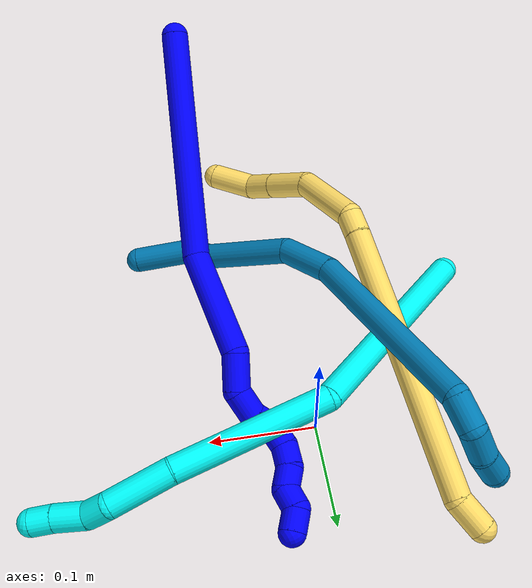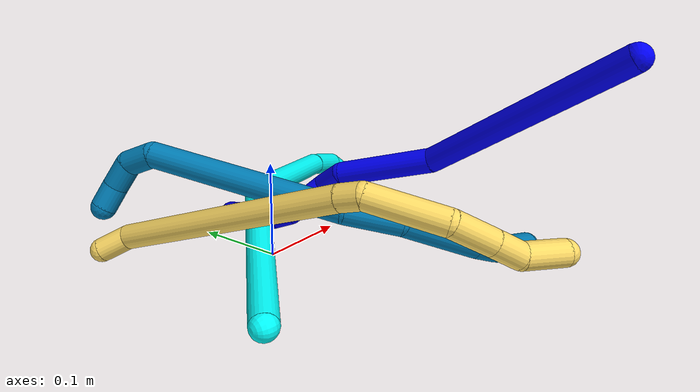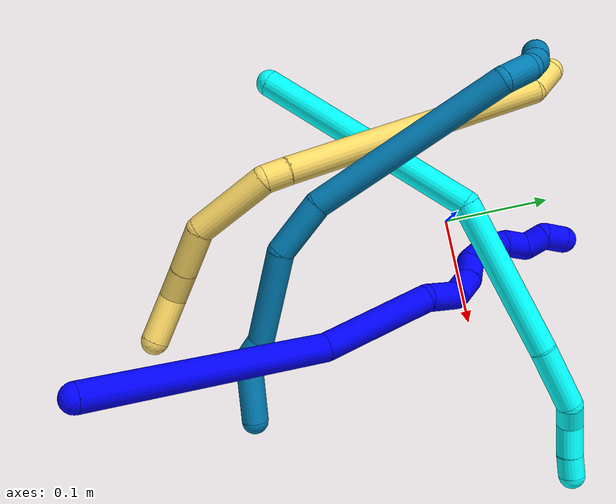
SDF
<sdf version="1.7">
 <world name="default">
  <model name="photoneo_s_sensor">
   <static>1</static>
   <pose>0 0 2 1.57079 1.57079 3.14159</pose>
   <link name="link">
    <inertial><mass>0.1</mass></inertial>
    <sensor name="sensor" type="depth">
     <update_rate>30</update_rate>
     <camera>
      <horizontal_fov>1.22</horizontal_fov>
      <image><width>1920</width><height>1200</height><format>B8G8R8</format></image>
      <clip><near>0.1</near><far>4</far></clip>
      <depth_camera><output>points</output></depth_camera>
     </camera>
     <plugin name="camera_plugin" filename="libgazebo_ros_depth_camera.so">
      <baseline>0.2</baseline>
      <alwaysOn>1</alwaysOn>
      <updateRate>0.0</updateRate>
      <cameraName>camera_ir</cameraName>
      <imageTopicName>/camera/color/image_raw</imageTopicName>
      <cameraInfoTopicName>/camera/color/camera_info</cameraInfoTopicName>
      <depthImageTopicName>/camera/depth/image_raw</depthImageTopicName>
      <depthImageCameraInfoTopicName>/camera/depth/camera_info</depthImageCameraInfoTopicName>
      <pointCloudTopicName>/camera/depth/points</pointCloudTopicName>
      <frameName>fr_optical</frameName>
      <pointCloudCutoff>0.1</pointCloudCutoff>
      <pointCloudCutoffMax>2.0</pointCloudCutoffMax>
      <distortionK1>0</distortionK1>
      <distortionK2>0</distortionK2>
      <distortionK3>0</distortionK3>
      <distortionT1>0</distortionT1>
      <distortionT2>0</distortionT2>
      <CxPrime>0</CxPrime>
      <Cx>0</Cx>
      <Cy>0</Cy>
      <focalLength>0</focalLength>
      <hackBaseline>0</hackBaseline>
     </plugin>
    </sensor>
   </link>
  </model>
  <model name="bin">
   <static>1</static>
   <link name="bottom">
    <collision name="collision-bottom">
     <pose>0 0 -0.01 0 -0 0</pose>
     <geometry><box><size>0.8 0.6 0.02</size></box></geometry>
     <surface>
      <friction><ode><mu>100</mu><mu2>100</mu2></ode></friction>
      <contact><collide_bitmask>65535</collide_bitmask></contact>
     </surface>
    </collision>
   </link>
   <link name="west_wall">
    <collision name="collision-west_wall">
     <pose>-0.41 0 0.1 0 -0 0</pose>
     <geometry><box><size>0.02 0.6 0.2</size></box></geometry>
     <surface>
      <friction><ode><mu>100</mu><mu2>100</mu2></ode></friction>
      <contact><collide_bitmask>65535</collide_bitmask></contact>
     </surface>
    </collision>
   </link>
   <link name="east_wall">
    <collision name="collision-east_wall">
     <pose>0.41 0 0.1 0 -0 0</pose>
     <geometry><box><size>0.02 0.6 0.2</size></box></geometry>
     <surface>
      <friction><ode><mu>100</mu><mu2>100</mu2></ode></friction>
      <contact><collide_bitmask>65535</collide_bitmask></contact>
     </surface>
    </collision>
   </link>
   <link name="south_wall">
    <collision name="collision-south_wall">
     <pose>0 -0.31 0.1 0 -0 0</pose>
     <geometry><box><size>0.8 0.02 0.2</size></box></geometry>
     <surface>
      <friction><ode><mu>100</mu><mu2>100</mu2></ode></friction>
      <contact><collide_bitmask>65535</collide_bitmask></contact>
     </surface>
    </collision>
   </link>
   <link name="north_wall">
    <collision name="collision-north_wall">
     <pose>0 0.31 0.1 0 -0 0</pose>
     <geometry><box><size>0.8 0.02 0.2</size></box></geometry>
     <surface>
      <friction><ode><mu>100</mu><mu2>100</mu2></ode></friction>
      <contact><collide_bitmask>65535</collide_bitmask></contact>
     </surface>
    </collision>
   </link>
  </model>
  <model name="1">
   <static>0</static>
   <link name="1">
    <collision name="collision-cylinder-e_1_1_4">
     <pose>-0.036711 0.092168 -0.041625 -1.995 -0.348209 0.531938</pose>
     <geometry><cylinder><radius>0.0125</radius><length>0.215176</length></cylinder></geometry>
     <surface>
      <friction><ode><mu>1.16</mu><mu2>1.16</mu2><slip1>0</slip1><slip2>0</slip2></ode></friction>
      <contact><ode><kp>1e+06</kp><kd>1</kd><max_vel>0</max_vel><min_depth>0.001</min_depth></ode></contact>
     </surface>
    </collision>
    <visual name="visual-cylinder-e_1_1_4">
     <pose>-0.036711 0.092168 -0.041625 -1.995 -0.348209 0.531938</pose>
     <geometry><cylinder><radius>0.0125</radius><length>0.215176</length></cylinder></geometry>
     <material><ambient>0 0 1 1</ambient></material>
    </visual>
    <collision name="collision-cylinder-e_2_4_5">
     <pose>-0.074927 0.234196 -0.09264 -1.75696 -0.029669 0.035778</pose>
     <geometry><cylinder><radius>0.0125</radius><length>0.101518</length></cylinder></geometry>
     <surface>
      <friction><ode><mu>1.16</mu><mu2>1.16</mu2><slip1>0</slip1><slip2>0</slip2></ode></friction>
      <contact><ode><kp>1e+06</kp><kd>1</kd><max_vel>0</max_vel><min_depth>0.001</min_depth></ode></contact>
     </surface>
    </collision>
    <visual name="visual-cylinder-e_2_4_5">
     <pose>-0.074927 0.234196 -0.09264 -1.75696 -0.029669 0.035778</pose>
     <geometry><cylinder><radius>0.0125</radius><length>0.101518</length></cylinder></geometry>
     <material><ambient>0 0 1 1</ambient></material>
    </visual>
    <collision name="collision-cylinder-e_3_5_6">
     <pose>-0.083049 0.297911 -0.1094 -2.05958 -0.39897 0.649215</pose>
     <geometry><cylinder><radius>0.0125</radius><length>0.034061</length></cylinder></geometry>
     <surface>
      <friction><ode><mu>1.16</mu><mu2>1.16</mu2><slip1>0</slip1><slip2>0</slip2></ode></friction>
      <contact><ode><kp>1e+06</kp><kd>1</kd><max_vel>0</max_vel><min_depth>0.001</min_depth></ode></contact>
     </surface>
    </collision>
    <visual name="visual-cylinder-e_3_5_6">
     <pose>-0.083049 0.297911 -0.1094 -2.05958 -0.39897 0.649215</pose>
     <geometry><cylinder><radius>0.0125</radius><length>0.034061</length></cylinder></geometry>
     <material><ambient>0 0 1 1</ambient></material>
    </visual>
    <collision name="collision-cylinder-e_4_6_7">
     <pose>-0.095521 0.323242 -0.114994 -1.41739 -0.467122 0.402373</pose>
     <geometry><cylinder><radius>0.0125</radius><length>0.026011</length></cylinder></geometry>
     <surface>
      <friction><ode><mu>1.16</mu><mu2>1.16</mu2><slip1>0</slip1><slip2>0</slip2></ode></friction>
      <contact><ode><kp>1e+06</kp><kd>1</kd><max_vel>0</max_vel><min_depth>0.001</min_depth></ode></contact>
     </surface>
    </collision>
    <visual name="visual-cylinder-e_4_6_7">
     <pose>-0.095521 0.323242 -0.114994 -1.41739 -0.467122 0.402373</pose>
     <geometry><cylinder><radius>0.0125</radius><length>0.026011</length></cylinder></geometry>
     <material><ambient>0 0 1 1</ambient></material>
    </visual>
    <collision name="collision-cylinder-e_5_7_8">
     <pose>-0.10629 0.342576 -0.10764 -0.953354 -0.471395 0.246776</pose>
     <geometry><cylinder><radius>0.0125</radius><length>0.021636</length></cylinder></geometry>
     <surface>
      <friction><ode><mu>1.16</mu><mu2>1.16</mu2><slip1>0</slip1><slip2>0</slip2></ode></friction>
      <contact><ode><kp>1e+06</kp><kd>1</kd><max_vel>0</max_vel><min_depth>0.001</min_depth></ode></contact>
     </surface>
    </collision>
    <visual name="visual-cylinder-e_5_7_8">
     <pose>-0.10629 0.342576 -0.10764 -0.953354 -0.471395 0.246776</pose>
     <geometry><cylinder><radius>0.0125</radius><length>0.021636</length></cylinder></geometry>
     <material><ambient>0 0 1 1</ambient></material>
    </visual>
    <collision name="collision-cylinder-e_6_8_9">
     <pose>-0.112171 0.360586 -0.101694 -1.53479 -0.095008 0.091652</pose>
     <geometry><cylinder><radius>0.0125</radius><length>0.020408</length></cylinder></geometry>
     <surface>
      <friction><ode><mu>1.16</mu><mu2>1.16</mu2><slip1>0</slip1><slip2>0</slip2></ode></friction>
      <contact><ode><kp>1e+06</kp><kd>1</kd><max_vel>0</max_vel><min_depth>0.001</min_depth></ode></contact>
     </surface>
    </collision>
    <visual name="visual-cylinder-e_6_8_9">
     <pose>-0.112171 0.360586 -0.101694 -1.53479 -0.095008 0.091652</pose>
     <geometry><cylinder><radius>0.0125</radius><length>0.020408</length></cylinder></geometry>
     <material><ambient>0 0 1 1</ambient></material>
    </visual>
    <collision name="collision-cylinder-e_7_9_10">
     <pose>-0.1124 0.380293 -0.104819 -1.92104 0.072528 -0.103662</pose>
     <geometry><cylinder><radius>0.0125</radius><length>0.020401</length></cylinder></geometry>
     <surface>
      <friction><ode><mu>1.16</mu><mu2>1.16</mu2><slip1>0</slip1><slip2>0</slip2></ode></friction>
      <contact><ode><kp>1e+06</kp><kd>1</kd><max_vel>0</max_vel><min_depth>0.001</min_depth></ode></contact>
     </surface>
    </collision>
    <visual name="visual-cylinder-e_7_9_10">
     <pose>-0.1124 0.380293 -0.104819 -1.92104 0.072528 -0.103662</pose>
     <geometry><cylinder><radius>0.0125</radius><length>0.020401</length></cylinder></geometry>
     <material><ambient>0 0 1 1</ambient></material>
    </visual>
    <collision name="collision-cylinder-e_8_10_11">
     <pose>-0.111772 0.397128 -0.115282 -2.33471 -0.011017 0.025807</pose>
     <geometry><cylinder><radius>0.0125</radius><length>0.020159</length></cylinder></geometry>
     <surface>
      <friction><ode><mu>1.16</mu><mu2>1.16</mu2><slip1>0</slip1><slip2>0</slip2></ode></friction>
      <contact><ode><kp>1e+06</kp><kd>1</kd><max_vel>0</max_vel><min_depth>0.001</min_depth></ode></contact>
     </surface>
    </collision>
    <visual name="visual-cylinder-e_8_10_11">
     <pose>-0.111772 0.397128 -0.115282 -2.33471 -0.011017 0.025807</pose>
     <geometry><cylinder><radius>0.0125</radius><length>0.020159</length></cylinder></geometry>
     <material><ambient>0 0 1 1</ambient></material>
    </visual>
    <collision name="collision-cylinder-e_9_11_12">
     <pose>-0.109731 0.414259 -0.123379 -1.68444 0.213667 -0.239209</pose>
     <geometry><cylinder><radius>0.0125</radius><length>0.020295</length></cylinder></geometry>
     <surface>
      <friction><ode><mu>1.16</mu><mu2>1.16</mu2><slip1>0</slip1><slip2>0</slip2></ode></friction>
      <contact><ode><kp>1e+06</kp><kd>1</kd><max_vel>0</max_vel><min_depth>0.001</min_depth></ode></contact>
     </surface>
    </collision>
    <visual name="visual-cylinder-e_9_11_12">
     <pose>-0.109731 0.414259 -0.123379 -1.68444 0.213667 -0.239209</pose>
     <geometry><cylinder><radius>0.0125</radius><length>0.020295</length></cylinder></geometry>
     <material><ambient>0 0 1 1</ambient></material>
    </visual>
    <collision name="collision-cylinder-e_10_12_2">
     <pose>-0.108413 0.431447 -0.131495 -2.33218 -0.082062 0.1911</pose>
     <geometry><cylinder><radius>0.0125</radius><length>0.020336</length></cylinder></geometry>
     <surface>
      <friction><ode><mu>1.16</mu><mu2>1.16</mu2><slip1>0</slip1><slip2>0</slip2></ode></friction>
      <contact><ode><kp>1e+06</kp><kd>1</kd><max_vel>0</max_vel><min_depth>0.001</min_depth></ode></contact>
     </surface>
    </collision>
    <visual name="visual-cylinder-e_10_12_2">
     <pose>-0.108413 0.431447 -0.131495 -2.33218 -0.082062 0.1911</pose>
     <geometry><cylinder><radius>0.0125</radius><length>0.020336</length></cylinder></geometry>
     <material><ambient>0 0 1 1</ambient></material>
    </visual>
    <collision name="collision-sphere-2">
     <pose>-0.109246 0.438782 -0.138487 0 -0 0</pose>
     <geometry><sphere><radius>0.0125</radius></sphere></geometry>
     <surface>
      <friction><ode><mu>1.16</mu><mu2>1.16</mu2><slip1>0</slip1><slip2>0</slip2></ode></friction>
      <contact><ode><kp>1e+06</kp><kd>1</kd><max_vel>0</max_vel><min_depth>0.001</min_depth></ode></contact>
     </surface>
    </collision>
    <visual name="visual-sphere-2">
     <pose>-0.109246 0.438782 -0.138487 0 -0 0</pose>
     <geometry><sphere><radius>0.0125</radius></sphere></geometry>
     <material><ambient>0 0 1 1</ambient></material>
    </visual>
    <collision name="collision-sphere-12">
     <pose>-0.107579 0.424111 -0.124503 0 -0 0</pose>
     <geometry><sphere><radius>0.0125</radius></sphere></geometry>
     <surface>
      <friction><ode><mu>1.16</mu><mu2>1.16</mu2><slip1>0</slip1><slip2>0</slip2></ode></friction>
      <contact><ode><kp>1e+06</kp><kd>1</kd><max_vel>0</max_vel><min_depth>0.001</min_depth></ode></contact>
     </surface>
    </collision>
    <visual name="visual-sphere-12">
     <pose>-0.107579 0.424111 -0.124503 0 -0 0</pose>
     <geometry><sphere><radius>0.0125</radius></sphere></geometry>
     <material><ambient>0 0 1 1</ambient></material>
    </visual>
    <collision name="collision-sphere-11">
     <pose>-0.111883 0.404406 -0.122254 0 -0 0</pose>
     <geometry><sphere><radius>0.0125</radius></sphere></geometry>
     <surface>
      <friction><ode><mu>1.16</mu><mu2>1.16</mu2><slip1>0</slip1><slip2>0</slip2></ode></friction>
      <contact><ode><kp>1e+06</kp><kd>1</kd><max_vel>0</max_vel><min_depth>0.001</min_depth></ode></contact>
     </surface>
    </collision>
    <visual name="visual-sphere-11">
     <pose>-0.111883 0.404406 -0.122254 0 -0 0</pose>
     <geometry><sphere><radius>0.0125</radius></sphere></geometry>
     <material><ambient>0 0 1 1</ambient></material>
    </visual>
    <collision name="collision-sphere-10">
     <pose>-0.111661 0.389849 -0.10831 0 -0 0</pose>
     <geometry><sphere><radius>0.0125</radius></sphere></geometry>
     <surface>
      <friction><ode><mu>1.16</mu><mu2>1.16</mu2><slip1>0</slip1><slip2>0</slip2></ode></friction>
      <contact><ode><kp>1e+06</kp><kd>1</kd><max_vel>0</max_vel><min_depth>0.001</min_depth></ode></contact>
     </surface>
    </collision>
    <visual name="visual-sphere-10">
     <pose>-0.111661 0.389849 -0.10831 0 -0 0</pose>
     <geometry><sphere><radius>0.0125</radius></sphere></geometry>
     <material><ambient>0 0 1 1</ambient></material>
    </visual>
    <collision name="collision-sphere-9">
     <pose>-0.113139 0.370737 -0.101329 0 -0 0</pose>
     <geometry><sphere><radius>0.0125</radius></sphere></geometry>
     <surface>
      <friction><ode><mu>1.16</mu><mu2>1.16</mu2><slip1>0</slip1><slip2>0</slip2></ode></friction>
      <contact><ode><kp>1e+06</kp><kd>1</kd><max_vel>0</max_vel><min_depth>0.001</min_depth></ode></contact>
     </surface>
    </collision>
    <visual name="visual-sphere-9">
     <pose>-0.113139 0.370737 -0.101329 0 -0 0</pose>
     <geometry><sphere><radius>0.0125</radius></sphere></geometry>
     <material><ambient>0 0 1 1</ambient></material>
    </visual>
    <collision name="collision-sphere-4">
     <pose>-0.073421 0.184336 -0.08325 0 -0 0</pose>
     <geometry><sphere><radius>0.0125</radius></sphere></geometry>
     <surface>
      <friction><ode><mu>1.16</mu><mu2>1.16</mu2><slip1>0</slip1><slip2>0</slip2></ode></friction>
      <contact><ode><kp>1e+06</kp><kd>1</kd><max_vel>0</max_vel><min_depth>0.001</min_depth></ode></contact>
     </surface>
    </collision>
    <visual name="visual-sphere-4">
     <pose>-0.073421 0.184336 -0.08325 0 -0 0</pose>
     <geometry><sphere><radius>0.0125</radius></sphere></geometry>
     <material><ambient>0 0 1 1</ambient></material>
    </visual>
    <collision name="collision-sphere-1">
     <geometry><sphere><radius>0.0125</radius></sphere></geometry>
     <surface>
      <friction><ode><mu>1.16</mu><mu2>1.16</mu2><slip1>0</slip1><slip2>0</slip2></ode></friction>
      <contact><ode><kp>1e+06</kp><kd>1</kd><max_vel>0</max_vel><min_depth>0.001</min_depth></ode></contact>
     </surface>
    </collision>
    <visual name="visual-sphere-1">
     <geometry><sphere><radius>0.0125</radius></sphere></geometry>
     <material><ambient>0 0 1 1</ambient></material>
    </visual>
    <collision name="collision-sphere-8">
     <pose>-0.111203 0.350435 -0.10206 0 -0 0</pose>
     <geometry><sphere><radius>0.0125</radius></sphere></geometry>
     <surface>
      <friction><ode><mu>1.16</mu><mu2>1.16</mu2><slip1>0</slip1><slip2>0</slip2></ode></friction>
      <contact><ode><kp>1e+06</kp><kd>1</kd><max_vel>0</max_vel><min_depth>0.001</min_depth></ode></contact>
     </surface>
    </collision>
    <visual name="visual-sphere-8">
     <pose>-0.111203 0.350435 -0.10206 0 -0 0</pose>
     <geometry><sphere><radius>0.0125</radius></sphere></geometry>
     <material><ambient>0 0 1 1</ambient></material>
    </visual>
    <collision name="collision-sphere-5">
     <pose>-0.076433 0.284056 -0.102031 0 -0 0</pose>
     <geometry><sphere><radius>0.0125</radius></sphere></geometry>
     <surface>
      <friction><ode><mu>1.16</mu><mu2>1.16</mu2><slip1>0</slip1><slip2>0</slip2></ode></friction>
      <contact><ode><kp>1e+06</kp><kd>1</kd><max_vel>0</max_vel><min_depth>0.001</min_depth></ode></contact>
     </surface>
    </collision>
    <visual name="visual-sphere-5">
     <pose>-0.076433 0.284056 -0.102031 0 -0 0</pose>
     <geometry><sphere><radius>0.0125</radius></sphere></geometry>
     <material><ambient>0 0 1 1</ambient></material>
    </visual>
    <collision name="collision-sphere-6">
     <pose>-0.089664 0.311766 -0.116769 0 -0 0</pose>
     <geometry><sphere><radius>0.0125</radius></sphere></geometry>
     <surface>
      <friction><ode><mu>1.16</mu><mu2>1.16</mu2><slip1>0</slip1><slip2>0</slip2></ode></friction>
      <contact><ode><kp>1e+06</kp><kd>1</kd><max_vel>0</max_vel><min_depth>0.001</min_depth></ode></contact>
     </surface>
    </collision>
    <visual name="visual-sphere-6">
     <pose>-0.089664 0.311766 -0.116769 0 -0 0</pose>
     <geometry><sphere><radius>0.0125</radius></sphere></geometry>
     <material><ambient>0 0 1 1</ambient></material>
    </visual>
    <collision name="collision-sphere-7">
     <pose>-0.101378 0.334717 -0.11322 0 -0 0</pose>
     <geometry><sphere><radius>0.0125</radius></sphere></geometry>
     <surface>
      <friction><ode><mu>1.16</mu><mu2>1.16</mu2><slip1>0</slip1><slip2>0</slip2></ode></friction>
      <contact><ode><kp>1e+06</kp><kd>1</kd><max_vel>0</max_vel><min_depth>0.001</min_depth></ode></contact>
     </surface>
    </collision>
    <visual name="visual-sphere-7">
     <pose>-0.101378 0.334717 -0.11322 0 -0 0</pose>
     <geometry><sphere><radius>0.0125</radius></sphere></geometry>
     <material><ambient>0 0 1 1</ambient></material>
    </visual>
    <inertial>
     <pose>-0.068772 0.219756 -0.078247 0 -0 0</pose>
     <mass>0.5</mass>
     <inertia>
      <ixx>0.001183</ixx>
      <ixy>0</ixy>
      <ixz>0</ixz>
      <iyy>0.000258</iyy>
      <iyz>0</iyz>
      <izz>-0.00054</izz>
     </inertia>
    </inertial>
   </link>
   <pose>0.083391 -0.316042 0.224074 -1.4423 -1.33363 1.8641</pose>
  </model>
  <model name="3">
   <static>0</static>
   <link name="3">
    <collision name="collision-cylinder-e_1_1_4">
     <pose>0.062595 0.066881 0.058111 -0.855447 0.615065 -0.287578</pose>
     <geometry><cylinder><radius>0.0125</radius><length>0.216961</length></cylinder></geometry>
     <surface>
      <friction><ode><mu>1.16</mu><mu2>1.16</mu2><slip1>0</slip1><slip2>0</slip2></ode></friction>
      <contact><ode><kp>1e+06</kp><kd>1</kd><max_vel>0</max_vel><min_depth>0.001</min_depth></ode></contact>
     </surface>
    </collision>
    <visual name="visual-cylinder-e_1_1_4">
     <pose>0.062595 0.066881 0.058111 -0.855447 0.615065 -0.287578</pose>
     <geometry><cylinder><radius>0.0125</radius><length>0.216961</length></cylinder></geometry>
     <material><ambient>0.003922 1 0.996078 1</ambient></material>
    </visual>
    <collision name="collision-cylinder-e_2_4_5">
     <pose>0.159452 0.14835 0.180765 -0.222287 0.477775 -0.054346</pose>
     <geometry><cylinder><radius>0.0125</radius><length>0.149031</length></cylinder></geometry>
     <surface>
      <friction><ode><mu>1.16</mu><mu2>1.16</mu2><slip1>0</slip1><slip2>0</slip2></ode></friction>
      <contact><ode><kp>1e+06</kp><kd>1</kd><max_vel>0</max_vel><min_depth>0.001</min_depth></ode></contact>
     </surface>
    </collision>
    <visual name="visual-cylinder-e_2_4_5">
     <pose>0.159452 0.14835 0.180765 -0.222287 0.477775 -0.054346</pose>
     <geometry><cylinder><radius>0.0125</radius><length>0.149031</length></cylinder></geometry>
     <material><ambient>0.003922 1 0.996078 1</ambient></material>
    </visual>
    <collision name="collision-cylinder-e_3_5_6">
     <pose>0.209665 0.164858 0.270002 -0.077593 0.572158 -0.022834</pose>
     <geometry><cylinder><radius>0.0125</radius><length>0.05892</length></cylinder></geometry>
     <surface>
      <friction><ode><mu>1.16</mu><mu2>1.16</mu2><slip1>0</slip1><slip2>0</slip2></ode></friction>
      <contact><ode><kp>1e+06</kp><kd>1</kd><max_vel>0</max_vel><min_depth>0.001</min_depth></ode></contact>
     </surface>
    </collision>
    <visual name="visual-cylinder-e_3_5_6">
     <pose>0.209665 0.164858 0.270002 -0.077593 0.572158 -0.022834</pose>
     <geometry><cylinder><radius>0.0125</radius><length>0.05892</length></cylinder></geometry>
     <material><ambient>0.003922 1 0.996078 1</ambient></material>
    </visual>
    <collision name="collision-cylinder-e_4_6_7">
     <pose>0.2318 0.161692 0.303793 0.509694 0.535467 0.142684</pose>
     <geometry><cylinder><radius>0.0125</radius><length>0.024238</length></cylinder></geometry>
     <surface>
      <friction><ode><mu>1.16</mu><mu2>1.16</mu2><slip1>0</slip1><slip2>0</slip2></ode></friction>
      <contact><ode><kp>1e+06</kp><kd>1</kd><max_vel>0</max_vel><min_depth>0.001</min_depth></ode></contact>
     </surface>
    </collision>
    <visual name="visual-cylinder-e_4_6_7">
     <pose>0.2318 0.161692 0.303793 0.509694 0.535467 0.142684</pose>
     <geometry><cylinder><radius>0.0125</radius><length>0.024238</length></cylinder></geometry>
     <material><ambient>0.003922 1 0.996078 1</ambient></material>
    </visual>
    <collision name="collision-cylinder-e_5_7_8">
     <pose>0.241003 0.153977 0.327483 0.178308 0.200929 0.018021</pose>
     <geometry><cylinder><radius>0.0125</radius><length>0.030261</length></cylinder></geometry>
     <surface>
      <friction><ode><mu>1.16</mu><mu2>1.16</mu2><slip1>0</slip1><slip2>0</slip2></ode></friction>
      <contact><ode><kp>1e+06</kp><kd>1</kd><max_vel>0</max_vel><min_depth>0.001</min_depth></ode></contact>
     </surface>
    </collision>
    <visual name="visual-cylinder-e_5_7_8">
     <pose>0.241003 0.153977 0.327483 0.178308 0.200929 0.018021</pose>
     <geometry><cylinder><radius>0.0125</radius><length>0.030261</length></cylinder></geometry>
     <material><ambient>0.003922 1 0.996078 1</ambient></material>
    </visual>
    <collision name="collision-cylinder-e_6_8_2">
     <pose>0.246953 0.150023 0.351853 0.134641 0.288552 0.01959</pose>
     <geometry><cylinder><radius>0.0125</radius><length>0.020589</length></cylinder></geometry>
     <surface>
      <friction><ode><mu>1.16</mu><mu2>1.16</mu2><slip1>0</slip1><slip2>0</slip2></ode></friction>
      <contact><ode><kp>1e+06</kp><kd>1</kd><max_vel>0</max_vel><min_depth>0.001</min_depth></ode></contact>
     </surface>
    </collision>
    <visual name="visual-cylinder-e_6_8_2">
     <pose>0.246953 0.150023 0.351853 0.134641 0.288552 0.01959</pose>
     <geometry><cylinder><radius>0.0125</radius><length>0.020589</length></cylinder></geometry>
     <material><ambient>0.003922 1 0.996078 1</ambient></material>
    </visual>
    <collision name="collision-sphere-2">
     <pose>0.249882 0.148698 0.361632 0 -0 0</pose>
     <geometry><sphere><radius>0.0125</radius></sphere></geometry>
     <surface>
      <friction><ode><mu>1.16</mu><mu2>1.16</mu2><slip1>0</slip1><slip2>0</slip2></ode></friction>
      <contact><ode><kp>1e+06</kp><kd>1</kd><max_vel>0</max_vel><min_depth>0.001</min_depth></ode></contact>
     </surface>
    </collision>
    <visual name="visual-sphere-2">
     <pose>0.249882 0.148698 0.361632 0 -0 0</pose>
     <geometry><sphere><radius>0.0125</radius></sphere></geometry>
     <material><ambient>0.003922 1 0.996078 1</ambient></material>
    </visual>
    <collision name="collision-sphere-4">
     <pose>0.125189 0.133762 0.116222 0 -0 0</pose>
     <geometry><sphere><radius>0.0125</radius></sphere></geometry>
     <surface>
      <friction><ode><mu>1.16</mu><mu2>1.16</mu2><slip1>0</slip1><slip2>0</slip2></ode></friction>
      <contact><ode><kp>1e+06</kp><kd>1</kd><max_vel>0</max_vel><min_depth>0.001</min_depth></ode></contact>
     </surface>
    </collision>
    <visual name="visual-sphere-4">
     <pose>0.125189 0.133762 0.116222 0 -0 0</pose>
     <geometry><sphere><radius>0.0125</radius></sphere></geometry>
     <material><ambient>0.003922 1 0.996078 1</ambient></material>
    </visual>
    <collision name="collision-sphere-1">
     <geometry><sphere><radius>0.0125</radius></sphere></geometry>
     <surface>
      <friction><ode><mu>1.16</mu><mu2>1.16</mu2><slip1>0</slip1><slip2>0</slip2></ode></friction>
      <contact><ode><kp>1e+06</kp><kd>1</kd><max_vel>0</max_vel><min_depth>0.001</min_depth></ode></contact>
     </surface>
    </collision>
    <visual name="visual-sphere-1">
     <geometry><sphere><radius>0.0125</radius></sphere></geometry>
     <material><ambient>0.003922 1 0.996078 1</ambient></material>
    </visual>
    <collision name="collision-sphere-8">
     <pose>0.244023 0.151348 0.342074 0 -0 0</pose>
     <geometry><sphere><radius>0.0125</radius></sphere></geometry>
     <surface>
      <friction><ode><mu>1.16</mu><mu2>1.16</mu2><slip1>0</slip1><slip2>0</slip2></ode></friction>
      <contact><ode><kp>1e+06</kp><kd>1</kd><max_vel>0</max_vel><min_depth>0.001</min_depth></ode></contact>
     </surface>
    </collision>
    <visual name="visual-sphere-8">
     <pose>0.244023 0.151348 0.342074 0 -0 0</pose>
     <geometry><sphere><radius>0.0125</radius></sphere></geometry>
     <material><ambient>0.003922 1 0.996078 1</ambient></material>
    </visual>
    <collision name="collision-sphere-5">
     <pose>0.193714 0.162938 0.245308 0 -0 0</pose>
     <geometry><sphere><radius>0.0125</radius></sphere></geometry>
     <surface>
      <friction><ode><mu>1.16</mu><mu2>1.16</mu2><slip1>0</slip1><slip2>0</slip2></ode></friction>
      <contact><ode><kp>1e+06</kp><kd>1</kd><max_vel>0</max_vel><min_depth>0.001</min_depth></ode></contact>
     </surface>
    </collision>
    <visual name="visual-sphere-5">
     <pose>0.193714 0.162938 0.245308 0 -0 0</pose>
     <geometry><sphere><radius>0.0125</radius></sphere></geometry>
     <material><ambient>0.003922 1 0.996078 1</ambient></material>
    </visual>
    <collision name="collision-sphere-6">
     <pose>0.225616 0.166778 0.294696 0 -0 0</pose>
     <geometry><sphere><radius>0.0125</radius></sphere></geometry>
     <surface>
      <friction><ode><mu>1.16</mu><mu2>1.16</mu2><slip1>0</slip1><slip2>0</slip2></ode></friction>
      <contact><ode><kp>1e+06</kp><kd>1</kd><max_vel>0</max_vel><min_depth>0.001</min_depth></ode></contact>
     </surface>
    </collision>
    <visual name="visual-sphere-6">
     <pose>0.225616 0.166778 0.294696 0 -0 0</pose>
     <geometry><sphere><radius>0.0125</radius></sphere></geometry>
     <material><ambient>0.003922 1 0.996078 1</ambient></material>
    </visual>
    <collision name="collision-sphere-7">
     <pose>0.237984 0.156607 0.312891 0 -0 0</pose>
     <geometry><sphere><radius>0.0125</radius></sphere></geometry>
     <surface>
      <friction><ode><mu>1.16</mu><mu2>1.16</mu2><slip1>0</slip1><slip2>0</slip2></ode></friction>
      <contact><ode><kp>1e+06</kp><kd>1</kd><max_vel>0</max_vel><min_depth>0.001</min_depth></ode></contact>
     </surface>
    </collision>
    <visual name="visual-sphere-7">
     <pose>0.237984 0.156607 0.312891 0 -0 0</pose>
     <geometry><sphere><radius>0.0125</radius></sphere></geometry>
     <material><ambient>0.003922 1 0.996078 1</ambient></material>
    </visual>
    <inertial>
     <pose>0.135386 0.116 0.159947 0 -0 0</pose>
     <mass>0.5</mass>
     <inertia>
      <ixx>0.000753</ixx>
      <ixy>0</ixy>
      <ixz>0</ixz>
      <iyy>0.000748</iyy>
      <iyz>0</iyz>
      <izz>-0.001195</izz>
     </inertia>
    </inertial>
   </link>
   <pose>-0.159133 -0.137625 0.037138 1.50416 0.665968 1.30344</pose>
  </model>
  <model name="5">
   <static>0</static>
   <link name="5">
    <collision name="collision-cylinder-e_1_1_4">
     <pose>-0.00251 -0.014216 -0.006326 1.98947 -0.159937 -0.245513</pose>
     <geometry><cylinder><radius>0.0125</radius><length>0.031523</length></cylinder></geometry>
     <surface>
      <friction><ode><mu>1.16</mu><mu2>1.16</mu2><slip1>0</slip1><slip2>0</slip2></ode></friction>
      <contact><ode><kp>1e+06</kp><kd>1</kd><max_vel>0</max_vel><min_depth>0.001</min_depth></ode></contact>
     </surface>
    </collision>
    <visual name="visual-cylinder-e_1_1_4">
     <pose>-0.00251 -0.014216 -0.006326 1.98947 -0.159937 -0.245513</pose>
     <geometry><cylinder><radius>0.0125</radius><length>0.031523</length></cylinder></geometry>
     <material><ambient>1 0.858824 0.4 1</ambient></material>
    </visual>
    <collision name="collision-cylinder-e_2_4_5">
     <pose>0.034042 -0.134448 -0.07427 2.09729 0.308392 0.527638</pose>
     <geometry><cylinder><radius>0.0125</radius><length>0.257386</length></cylinder></geometry>
     <surface>
      <friction><ode><mu>1.16</mu><mu2>1.16</mu2><slip1>0</slip1><slip2>0</slip2></ode></friction>
      <contact><ode><kp>1e+06</kp><kd>1</kd><max_vel>0</max_vel><min_depth>0.001</min_depth></ode></contact>
     </surface>
    </collision>
    <visual name="visual-cylinder-e_2_4_5">
     <pose>0.034042 -0.134448 -0.07427 2.09729 0.308392 0.527638</pose>
     <geometry><cylinder><radius>0.0125</radius><length>0.257386</length></cylinder></geometry>
     <material><ambient>1 0.858824 0.4 1</ambient></material>
    </visual>
    <collision name="collision-cylinder-e_3_5_6">
     <pose>0.076776 -0.249756 -0.140379 2.0209 0.341859 0.536942</pose>
     <geometry><cylinder><radius>0.0125</radius><length>0.021909</length></cylinder></geometry>
     <surface>
      <friction><ode><mu>1.16</mu><mu2>1.16</mu2><slip1>0</slip1><slip2>0</slip2></ode></friction>
      <contact><ode><kp>1e+06</kp><kd>1</kd><max_vel>0</max_vel><min_depth>0.001</min_depth></ode></contact>
     </surface>
    </collision>
    <visual name="visual-cylinder-e_3_5_6">
     <pose>0.076776 -0.249756 -0.140379 2.0209 0.341859 0.536942</pose>
     <geometry><cylinder><radius>0.0125</radius><length>0.021909</length></cylinder></geometry>
     <material><ambient>1 0.858824 0.4 1</ambient></material>
    </visual>
    <collision name="collision-cylinder-e_4_6_7">
     <pose>0.093068 -0.292668 -0.140618 1.44502 0.356496 0.314997</pose>
     <geometry><cylinder><radius>0.0125</radius><length>0.072321</length></cylinder></geometry>
     <surface>
      <friction><ode><mu>1.16</mu><mu2>1.16</mu2><slip1>0</slip1><slip2>0</slip2></ode></friction>
      <contact><ode><kp>1e+06</kp><kd>1</kd><max_vel>0</max_vel><min_depth>0.001</min_depth></ode></contact>
     </surface>
    </collision>
    <visual name="visual-cylinder-e_4_6_7">
     <pose>0.093068 -0.292668 -0.140618 1.44502 0.356496 0.314997</pose>
     <geometry><cylinder><radius>0.0125</radius><length>0.072321</length></cylinder></geometry>
     <material><ambient>1 0.858824 0.4 1</ambient></material>
    </visual>
    <collision name="collision-cylinder-e_5_7_8">
     <pose>0.10696 -0.34478 -0.125008 1.01998 0.058586 0.032776</pose>
     <geometry><cylinder><radius>0.0125</radius><length>0.043479</length></cylinder></geometry>
     <surface>
      <friction><ode><mu>1.16</mu><mu2>1.16</mu2><slip1>0</slip1><slip2>0</slip2></ode></friction>
      <contact><ode><kp>1e+06</kp><kd>1</kd><max_vel>0</max_vel><min_depth>0.001</min_depth></ode></contact>
     </surface>
    </collision>
    <visual name="visual-cylinder-e_5_7_8">
     <pose>0.10696 -0.34478 -0.125008 1.01998 0.058586 0.032776</pose>
     <geometry><cylinder><radius>0.0125</radius><length>0.043479</length></cylinder></geometry>
     <material><ambient>1 0.858824 0.4 1</ambient></material>
    </visual>
    <collision name="collision-cylinder-e_6_8_9">
     <pose>0.109356 -0.375974 -0.105694 1.01123 0.074748 0.041395</pose>
     <geometry><cylinder><radius>0.0125</radius><length>0.030059</length></cylinder></geometry>
     <surface>
      <friction><ode><mu>1.16</mu><mu2>1.16</mu2><slip1>0</slip1><slip2>0</slip2></ode></friction>
      <contact><ode><kp>1e+06</kp><kd>1</kd><max_vel>0</max_vel><min_depth>0.001</min_depth></ode></contact>
     </surface>
    </collision>
    <visual name="visual-cylinder-e_6_8_9">
     <pose>0.109356 -0.375974 -0.105694 1.01123 0.074748 0.041395</pose>
     <geometry><cylinder><radius>0.0125</radius><length>0.030059</length></cylinder></geometry>
     <material><ambient>1 0.858824 0.4 1</ambient></material>
    </visual>
    <collision name="collision-cylinder-e_7_9_2">
     <pose>0.106068 -0.409455 -0.093494 1.36932 -0.205026 -0.167577</pose>
     <geometry><cylinder><radius>0.0125</radius><length>0.043323</length></cylinder></geometry>
     <surface>
      <friction><ode><mu>1.16</mu><mu2>1.16</mu2><slip1>0</slip1><slip2>0</slip2></ode></friction>
      <contact><ode><kp>1e+06</kp><kd>1</kd><max_vel>0</max_vel><min_depth>0.001</min_depth></ode></contact>
     </surface>
    </collision>
    <visual name="visual-cylinder-e_7_9_2">
     <pose>0.106068 -0.409455 -0.093494 1.36932 -0.205026 -0.167577</pose>
     <geometry><cylinder><radius>0.0125</radius><length>0.043323</length></cylinder></geometry>
     <material><ambient>1 0.858824 0.4 1</ambient></material>
    </visual>
    <collision name="collision-sphere-2">
     <pose>0.101658 -0.430233 -0.08925 0 -0 0</pose>
     <geometry><sphere><radius>0.0125</radius></sphere></geometry>
     <surface>
      <friction><ode><mu>1.16</mu><mu2>1.16</mu2><slip1>0</slip1><slip2>0</slip2></ode></friction>
      <contact><ode><kp>1e+06</kp><kd>1</kd><max_vel>0</max_vel><min_depth>0.001</min_depth></ode></contact>
     </surface>
    </collision>
    <visual name="visual-sphere-2">
     <pose>0.101658 -0.430233 -0.08925 0 -0 0</pose>
     <geometry><sphere><radius>0.0125</radius></sphere></geometry>
     <material><ambient>1 0.858824 0.4 1</ambient></material>
    </visual>
    <collision name="collision-sphere-9">
     <pose>0.110478 -0.388676 -0.097738 0 -0 0</pose>
     <geometry><sphere><radius>0.0125</radius></sphere></geometry>
     <surface>
      <friction><ode><mu>1.16</mu><mu2>1.16</mu2><slip1>0</slip1><slip2>0</slip2></ode></friction>
      <contact><ode><kp>1e+06</kp><kd>1</kd><max_vel>0</max_vel><min_depth>0.001</min_depth></ode></contact>
     </surface>
    </collision>
    <visual name="visual-sphere-9">
     <pose>0.110478 -0.388676 -0.097738 0 -0 0</pose>
     <geometry><sphere><radius>0.0125</radius></sphere></geometry>
     <material><ambient>1 0.858824 0.4 1</ambient></material>
    </visual>
    <collision name="collision-sphere-4">
     <pose>-0.00502 -0.028433 -0.012652 0 -0 0</pose>
     <geometry><sphere><radius>0.0125</radius></sphere></geometry>
     <surface>
      <friction><ode><mu>1.16</mu><mu2>1.16</mu2><slip1>0</slip1><slip2>0</slip2></ode></friction>
      <contact><ode><kp>1e+06</kp><kd>1</kd><max_vel>0</max_vel><min_depth>0.001</min_depth></ode></contact>
     </surface>
    </collision>
    <visual name="visual-sphere-4">
     <pose>-0.00502 -0.028433 -0.012652 0 -0 0</pose>
     <geometry><sphere><radius>0.0125</radius></sphere></geometry>
     <material><ambient>1 0.858824 0.4 1</ambient></material>
    </visual>
    <collision name="collision-sphere-1">
     <geometry><sphere><radius>0.0125</radius></sphere></geometry>
     <surface>
      <friction><ode><mu>1.16</mu><mu2>1.16</mu2><slip1>0</slip1><slip2>0</slip2></ode></friction>
      <contact><ode><kp>1e+06</kp><kd>1</kd><max_vel>0</max_vel><min_depth>0.001</min_depth></ode></contact>
     </surface>
    </collision>
    <visual name="visual-sphere-1">
     <geometry><sphere><radius>0.0125</radius></sphere></geometry>
     <material><ambient>1 0.858824 0.4 1</ambient></material>
    </visual>
    <collision name="collision-sphere-8">
     <pose>0.108233 -0.363272 -0.11365 0 -0 0</pose>
     <geometry><sphere><radius>0.0125</radius></sphere></geometry>
     <surface>
      <friction><ode><mu>1.16</mu><mu2>1.16</mu2><slip1>0</slip1><slip2>0</slip2></ode></friction>
      <contact><ode><kp>1e+06</kp><kd>1</kd><max_vel>0</max_vel><min_depth>0.001</min_depth></ode></contact>
     </surface>
    </collision>
    <visual name="visual-sphere-8">
     <pose>0.108233 -0.363272 -0.11365 0 -0 0</pose>
     <geometry><sphere><radius>0.0125</radius></sphere></geometry>
     <material><ambient>1 0.858824 0.4 1</ambient></material>
    </visual>
    <collision name="collision-sphere-5">
     <pose>0.073103 -0.240464 -0.135888 0 -0 0</pose>
     <geometry><sphere><radius>0.0125</radius></sphere></geometry>
     <surface>
      <friction><ode><mu>1.16</mu><mu2>1.16</mu2><slip1>0</slip1><slip2>0</slip2></ode></friction>
      <contact><ode><kp>1e+06</kp><kd>1</kd><max_vel>0</max_vel><min_depth>0.001</min_depth></ode></contact>
     </surface>
    </collision>
    <visual name="visual-sphere-5">
     <pose>0.073103 -0.240464 -0.135888 0 -0 0</pose>
     <geometry><sphere><radius>0.0125</radius></sphere></geometry>
     <material><ambient>1 0.858824 0.4 1</ambient></material>
    </visual>
    <collision name="collision-sphere-6">
     <pose>0.080448 -0.259049 -0.144869 0 -0 0</pose>
     <geometry><sphere><radius>0.0125</radius></sphere></geometry>
     <surface>
      <friction><ode><mu>1.16</mu><mu2>1.16</mu2><slip1>0</slip1><slip2>0</slip2></ode></friction>
      <contact><ode><kp>1e+06</kp><kd>1</kd><max_vel>0</max_vel><min_depth>0.001</min_depth></ode></contact>
     </surface>
    </collision>
    <visual name="visual-sphere-6">
     <pose>0.080448 -0.259049 -0.144869 0 -0 0</pose>
     <geometry><sphere><radius>0.0125</radius></sphere></geometry>
     <material><ambient>1 0.858824 0.4 1</ambient></material>
    </visual>
    <collision name="collision-sphere-7">
     <pose>0.105688 -0.326288 -0.136367 0 -0 0</pose>
     <geometry><sphere><radius>0.0125</radius></sphere></geometry>
     <surface>
      <friction><ode><mu>1.16</mu><mu2>1.16</mu2><slip1>0</slip1><slip2>0</slip2></ode></friction>
      <contact><ode><kp>1e+06</kp><kd>1</kd><max_vel>0</max_vel><min_depth>0.001</min_depth></ode></contact>
     </surface>
    </collision>
    <visual name="visual-sphere-7">
     <pose>0.105688 -0.326288 -0.136367 0 -0 0</pose>
     <geometry><sphere><radius>0.0125</radius></sphere></geometry>
     <material><ambient>1 0.858824 0.4 1</ambient></material>
    </visual>
    <inertial>
     <pose>0.059257 -0.211444 -0.090447 0 -0 0</pose>
     <mass>0.5</mass>
     <inertia>
      <ixx>0.001937</ixx>
      <ixy>0</ixy>
      <ixz>0</ixz>
      <iyy>0.000244</iyy>
      <iyz>0</iyz>
      <izz>0.000782</izz>
     </inertia>
    </inertial>
   </link>
   <pose>-0.119555 0.127297 0.01316 -3.11339 0.445712 -2.43729</pose>
  </model>
  <model name="9">
   <static>0</static>
   <link name="9">
    <collision name="collision-cylinder-e_1_1_4">
     <pose>-0.011734 0.009207 0.026333 -0.336346 -0.398158 0.068478</pose>
     <geometry><cylinder><radius>0.0125</radius><length>0.060528</length></cylinder></geometry>
     <surface>
      <friction><ode><mu>1.16</mu><mu2>1.16</mu2><slip1>0</slip1><slip2>0</slip2></ode></friction>
      <contact><ode><kp>1e+06</kp><kd>1</kd><max_vel>0</max_vel><min_depth>0.001</min_depth></ode></contact>
     </surface>
    </collision>
    <visual name="visual-cylinder-e_1_1_4">
     <pose>-0.011734 0.009207 0.026333 -0.336346 -0.398158 0.068478</pose>
     <geometry><cylinder><radius>0.0125</radius><length>0.060528</length></cylinder></geometry>
     <material><ambient>0 0.490196 0.709804 1</ambient></material>
    </visual>
    <collision name="collision-cylinder-e_2_4_5">
     <pose>-0.025271 0.027196 0.058181 -1.01017 -0.172146 0.095347</pose>
     <geometry><cylinder><radius>0.0125</radius><length>0.02105</length></cylinder></geometry>
     <surface>
      <friction><ode><mu>1.16</mu><mu2>1.16</mu2><slip1>0</slip1><slip2>0</slip2></ode></friction>
      <contact><ode><kp>1e+06</kp><kd>1</kd><max_vel>0</max_vel><min_depth>0.001</min_depth></ode></contact>
     </surface>
    </collision>
    <visual name="visual-cylinder-e_2_4_5">
     <pose>-0.025271 0.027196 0.058181 -1.01017 -0.172146 0.095347</pose>
     <geometry><cylinder><radius>0.0125</radius><length>0.02105</length></cylinder></geometry>
     <material><ambient>0 0.490196 0.709804 1</ambient></material>
    </visual>
    <collision name="collision-cylinder-e_3_5_6">
     <pose>-0.032805 0.062328 0.100619 -0.619798 -0.125674 0.04029</pose>
     <geometry><cylinder><radius>0.0125</radius><length>0.091446</length></cylinder></geometry>
     <surface>
      <friction><ode><mu>1.16</mu><mu2>1.16</mu2><slip1>0</slip1><slip2>0</slip2></ode></friction>
      <contact><ode><kp>1e+06</kp><kd>1</kd><max_vel>0</max_vel><min_depth>0.001</min_depth></ode></contact>
     </surface>
    </collision>
    <visual name="visual-cylinder-e_3_5_6">
     <pose>-0.032805 0.062328 0.100619 -0.619798 -0.125674 0.04029</pose>
     <geometry><cylinder><radius>0.0125</radius><length>0.091446</length></cylinder></geometry>
     <material><ambient>0 0.490196 0.709804 1</ambient></material>
    </visual>
    <collision name="collision-cylinder-e_4_6_7">
     <pose>-0.04262 0.112261 0.150361 -1.07296 -0.151011 0.08991</pose>
     <geometry><cylinder><radius>0.0125</radius><length>0.0543</length></cylinder></geometry>
     <surface>
      <friction><ode><mu>1.16</mu><mu2>1.16</mu2><slip1>0</slip1><slip2>0</slip2></ode></friction>
      <contact><ode><kp>1e+06</kp><kd>1</kd><max_vel>0</max_vel><min_depth>0.001</min_depth></ode></contact>
     </surface>
    </collision>
    <visual name="visual-cylinder-e_4_6_7">
     <pose>-0.04262 0.112261 0.150361 -1.07296 -0.151011 0.08991</pose>
     <geometry><cylinder><radius>0.0125</radius><length>0.0543</length></cylinder></geometry>
     <material><ambient>0 0.490196 0.709804 1</ambient></material>
    </visual>
    <collision name="collision-cylinder-e_5_7_8">
     <pose>-0.048145 0.229129 0.183467 -1.35664 -0.015089 0.01216</pose>
     <geometry><cylinder><radius>0.0125</radius><length>0.190953</length></cylinder></geometry>
     <surface>
      <friction><ode><mu>1.16</mu><mu2>1.16</mu2><slip1>0</slip1><slip2>0</slip2></ode></friction>
      <contact><ode><kp>1e+06</kp><kd>1</kd><max_vel>0</max_vel><min_depth>0.001</min_depth></ode></contact>
     </surface>
    </collision>
    <visual name="visual-cylinder-e_5_7_8">
     <pose>-0.048145 0.229129 0.183467 -1.35664 -0.015089 0.01216</pose>
     <geometry><cylinder><radius>0.0125</radius><length>0.190953</length></cylinder></geometry>
     <material><ambient>0 0.490196 0.709804 1</ambient></material>
    </visual>
    <collision name="collision-cylinder-e_6_8_9">
     <pose>-0.056111 0.335884 0.20132 -1.7497 -0.444802 0.528739</pose>
     <geometry><cylinder><radius>0.0125</radius><length>0.030329</length></cylinder></geometry>
     <surface>
      <friction><ode><mu>1.16</mu><mu2>1.16</mu2><slip1>0</slip1><slip2>0</slip2></ode></friction>
      <contact><ode><kp>1e+06</kp><kd>1</kd><max_vel>0</max_vel><min_depth>0.001</min_depth></ode></contact>
     </surface>
    </collision>
    <visual name="visual-cylinder-e_6_8_9">
     <pose>-0.056111 0.335884 0.20132 -1.7497 -0.444802 0.528739</pose>
     <geometry><cylinder><radius>0.0125</radius><length>0.030329</length></cylinder></geometry>
     <material><ambient>0 0.490196 0.709804 1</ambient></material>
    </visual>
    <collision name="collision-cylinder-e_7_9_10">
     <pose>-0.074222 0.355124 0.194709 -2.19707 -1.01967 1.66108</pose>
     <geometry><cylinder><radius>0.0125</radius><length>0.0272</length></cylinder></geometry>
     <surface>
      <friction><ode><mu>1.16</mu><mu2>1.16</mu2><slip1>0</slip1><slip2>0</slip2></ode></friction>
      <contact><ode><kp>1e+06</kp><kd>1</kd><max_vel>0</max_vel><min_depth>0.001</min_depth></ode></contact>
     </surface>
    </collision>
    <visual name="visual-cylinder-e_7_9_10">
     <pose>-0.074222 0.355124 0.194709 -2.19707 -1.01967 1.66108</pose>
     <geometry><cylinder><radius>0.0125</radius><length>0.0272</length></cylinder></geometry>
     <material><ambient>0 0.490196 0.709804 1</ambient></material>
    </visual>
    <collision name="collision-cylinder-e_8_10_2">
     <pose>-0.097286 0.364203 0.188624 -2.09449 -1.24943 1.79136</pose>
     <geometry><cylinder><radius>0.0125</radius><length>0.024193</length></cylinder></geometry>
     <surface>
      <friction><ode><mu>1.16</mu><mu2>1.16</mu2><slip1>0</slip1><slip2>0</slip2></ode></friction>
      <contact><ode><kp>1e+06</kp><kd>1</kd><max_vel>0</max_vel><min_depth>0.001</min_depth></ode></contact>
     </surface>
    </collision>
    <visual name="visual-cylinder-e_8_10_2">
     <pose>-0.097286 0.364203 0.188624 -2.09449 -1.24943 1.79136</pose>
     <geometry><cylinder><radius>0.0125</radius><length>0.024193</length></cylinder></geometry>
     <material><ambient>0 0.490196 0.709804 1</ambient></material>
    </visual>
    <collision name="collision-sphere-2">
     <pose>-0.108764 0.367512 0.186714 0 -0 0</pose>
     <geometry><sphere><radius>0.0125</radius></sphere></geometry>
     <surface>
      <friction><ode><mu>1.16</mu><mu2>1.16</mu2><slip1>0</slip1><slip2>0</slip2></ode></friction>
      <contact><ode><kp>1e+06</kp><kd>1</kd><max_vel>0</max_vel><min_depth>0.001</min_depth></ode></contact>
     </surface>
    </collision>
    <visual name="visual-sphere-2">
     <pose>-0.108764 0.367512 0.186714 0 -0 0</pose>
     <geometry><sphere><radius>0.0125</radius></sphere></geometry>
     <material><ambient>0 0.490196 0.709804 1</ambient></material>
    </visual>
    <collision name="collision-sphere-10">
     <pose>-0.085809 0.360895 0.190535 0 -0 0</pose>
     <geometry><sphere><radius>0.0125</radius></sphere></geometry>
     <surface>
      <friction><ode><mu>1.16</mu><mu2>1.16</mu2><slip1>0</slip1><slip2>0</slip2></ode></friction>
      <contact><ode><kp>1e+06</kp><kd>1</kd><max_vel>0</max_vel><min_depth>0.001</min_depth></ode></contact>
     </surface>
    </collision>
    <visual name="visual-sphere-10">
     <pose>-0.085809 0.360895 0.190535 0 -0 0</pose>
     <geometry><sphere><radius>0.0125</radius></sphere></geometry>
     <material><ambient>0 0.490196 0.709804 1</ambient></material>
    </visual>
    <collision name="collision-sphere-9">
     <pose>-0.062636 0.349354 0.198884 0 -0 0</pose>
     <geometry><sphere><radius>0.0125</radius></sphere></geometry>
     <surface>
      <friction><ode><mu>1.16</mu><mu2>1.16</mu2><slip1>0</slip1><slip2>0</slip2></ode></friction>
      <contact><ode><kp>1e+06</kp><kd>1</kd><max_vel>0</max_vel><min_depth>0.001</min_depth></ode></contact>
     </surface>
    </collision>
    <visual name="visual-sphere-9">
     <pose>-0.062636 0.349354 0.198884 0 -0 0</pose>
     <geometry><sphere><radius>0.0125</radius></sphere></geometry>
     <material><ambient>0 0.490196 0.709804 1</ambient></material>
    </visual>
    <collision name="collision-sphere-4">
     <pose>-0.023468 0.018414 0.052667 0 -0 0</pose>
     <geometry><sphere><radius>0.0125</radius></sphere></geometry>
     <surface>
      <friction><ode><mu>1.16</mu><mu2>1.16</mu2><slip1>0</slip1><slip2>0</slip2></ode></friction>
      <contact><ode><kp>1e+06</kp><kd>1</kd><max_vel>0</max_vel><min_depth>0.001</min_depth></ode></contact>
     </surface>
    </collision>
    <visual name="visual-sphere-4">
     <pose>-0.023468 0.018414 0.052667 0 -0 0</pose>
     <geometry><sphere><radius>0.0125</radius></sphere></geometry>
     <material><ambient>0 0.490196 0.709804 1</ambient></material>
    </visual>
    <collision name="collision-sphere-1">
     <geometry><sphere><radius>0.0125</radius></sphere></geometry>
     <surface>
      <friction><ode><mu>1.16</mu><mu2>1.16</mu2><slip1>0</slip1><slip2>0</slip2></ode></friction>
      <contact><ode><kp>1e+06</kp><kd>1</kd><max_vel>0</max_vel><min_depth>0.001</min_depth></ode></contact>
     </surface>
    </collision>
    <visual name="visual-sphere-1">
     <geometry><sphere><radius>0.0125</radius></sphere></geometry>
     <material><ambient>0 0.490196 0.709804 1</ambient></material>
    </visual>
    <collision name="collision-sphere-8">
     <pose>-0.049586 0.322414 0.203756 0 -0 0</pose>
     <geometry><sphere><radius>0.0125</radius></sphere></geometry>
     <surface>
      <friction><ode><mu>1.16</mu><mu2>1.16</mu2><slip1>0</slip1><slip2>0</slip2></ode></friction>
      <contact><ode><kp>1e+06</kp><kd>1</kd><max_vel>0</max_vel><min_depth>0.001</min_depth></ode></contact>
     </surface>
    </collision>
    <visual name="visual-sphere-8">
     <pose>-0.049586 0.322414 0.203756 0 -0 0</pose>
     <geometry><sphere><radius>0.0125</radius></sphere></geometry>
     <material><ambient>0 0.490196 0.709804 1</ambient></material>
    </visual>
    <collision name="collision-sphere-5">
     <pose>-0.027074 0.035978 0.063694 0 -0 0</pose>
     <geometry><sphere><radius>0.0125</radius></sphere></geometry>
     <surface>
      <friction><ode><mu>1.16</mu><mu2>1.16</mu2><slip1>0</slip1><slip2>0</slip2></ode></friction>
      <contact><ode><kp>1e+06</kp><kd>1</kd><max_vel>0</max_vel><min_depth>0.001</min_depth></ode></contact>
     </surface>
    </collision>
    <visual name="visual-sphere-5">
     <pose>-0.027074 0.035978 0.063694 0 -0 0</pose>
     <geometry><sphere><radius>0.0125</radius></sphere></geometry>
     <material><ambient>0 0.490196 0.709804 1</ambient></material>
    </visual>
    <collision name="collision-sphere-6">
     <pose>-0.038536 0.088678 0.137544 0 -0 0</pose>
     <geometry><sphere><radius>0.0125</radius></sphere></geometry>
     <surface>
      <friction><ode><mu>1.16</mu><mu2>1.16</mu2><slip1>0</slip1><slip2>0</slip2></ode></friction>
      <contact><ode><kp>1e+06</kp><kd>1</kd><max_vel>0</max_vel><min_depth>0.001</min_depth></ode></contact>
     </surface>
    </collision>
    <visual name="visual-sphere-6">
     <pose>-0.038536 0.088678 0.137544 0 -0 0</pose>
     <geometry><sphere><radius>0.0125</radius></sphere></geometry>
     <material><ambient>0 0.490196 0.709804 1</ambient></material>
    </visual>
    <collision name="collision-sphere-7">
     <pose>-0.046705 0.135844 0.163179 0 -0 0</pose>
     <geometry><sphere><radius>0.0125</radius></sphere></geometry>
     <surface>
      <friction><ode><mu>1.16</mu><mu2>1.16</mu2><slip1>0</slip1><slip2>0</slip2></ode></friction>
      <contact><ode><kp>1e+06</kp><kd>1</kd><max_vel>0</max_vel><min_depth>0.001</min_depth></ode></contact>
     </surface>
    </collision>
    <visual name="visual-sphere-7">
     <pose>-0.046705 0.135844 0.163179 0 -0 0</pose>
     <geometry><sphere><radius>0.0125</radius></sphere></geometry>
     <material><ambient>0 0.490196 0.709804 1</ambient></material>
    </visual>
    <inertial>
     <pose>-0.043648 0.170672 0.142367 0 -0 0</pose>
     <mass>0.5</mass>
     <inertia>
      <ixx>0.000701</ixx>
      <ixy>0</ixy>
      <ixz>0</ixz>
      <iyy>0.000257</iyy>
      <iyz>0</iyz>
      <izz>-0.000591</izz>
     </inertia>
    </inertial>
   </link>
   <pose>0.147024 -0.218173 0.018147 0.136156 -0.944405 0.061986</pose>
  </model>
 </world>
</sdf>
